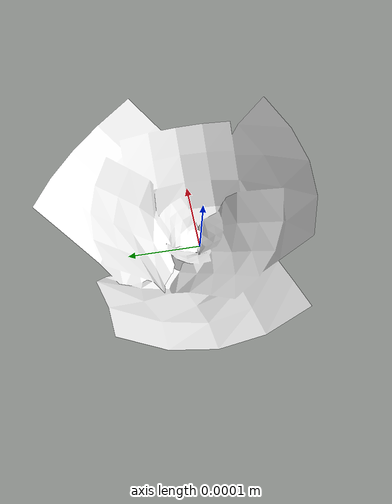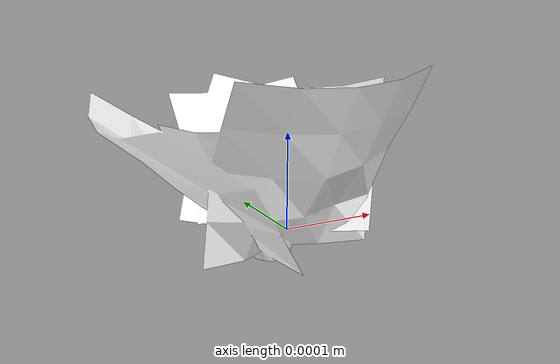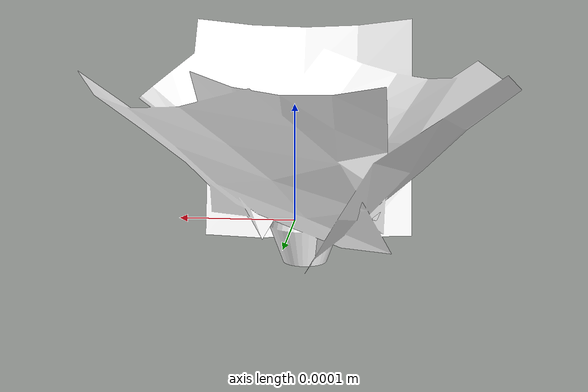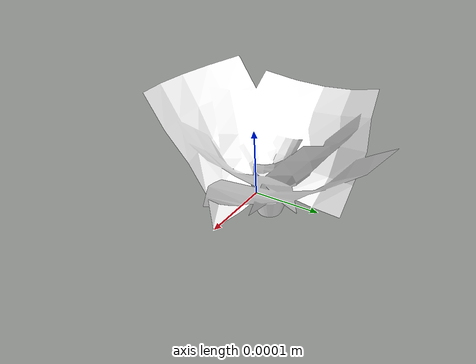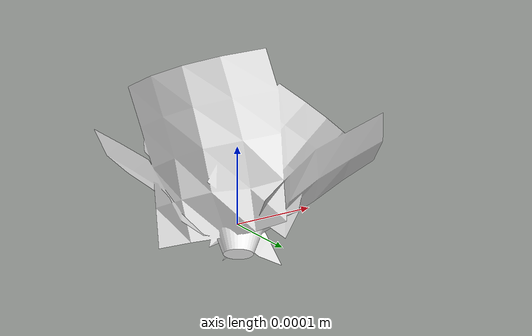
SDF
<?xml version='1.0'?>
<sdf version='1.6'>
  <model name='farm_model'>
    <static>true</static>
    <link name='link'>
      <pose>0 0 0 -1.570796 3.141592 0</pose>

      <collision name='collision'>
        <geometry>
          <mesh>
            <uri>model://lecttuce/meshes/lettuce.dae</uri>
            <scale>0.001 0.001 0.001</scale>
          </mesh>
        </geometry>
      </collision>

      <visual name='visual'>
        <geometry>
          <mesh>
            <uri>model://lecttuce/meshes/lettuce.dae</uri>
            <scale>0.001 0.001 0.001</scale>
          </mesh>
        </geometry>
      </visual>
    </link>
  </model>
</sdf>
